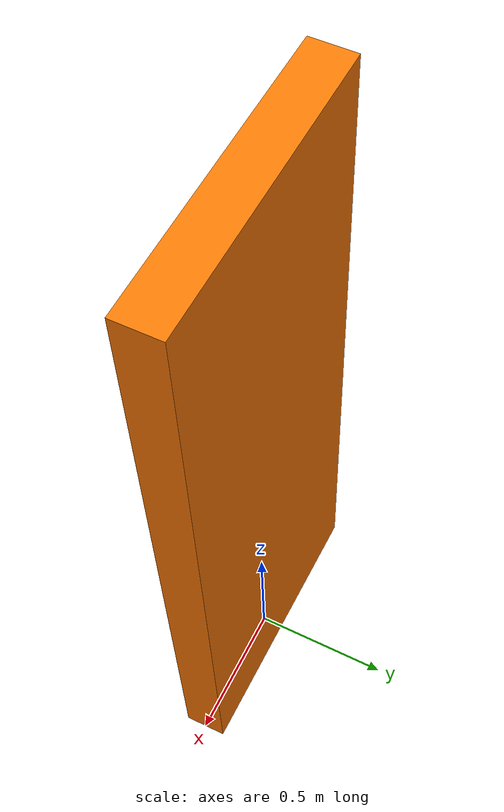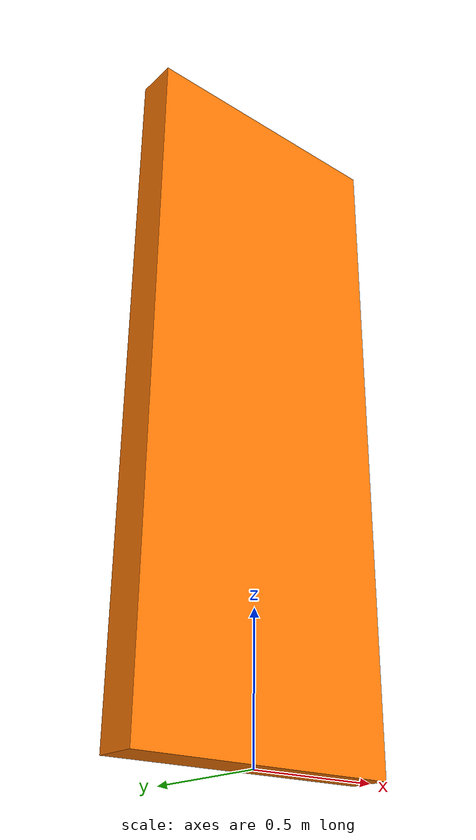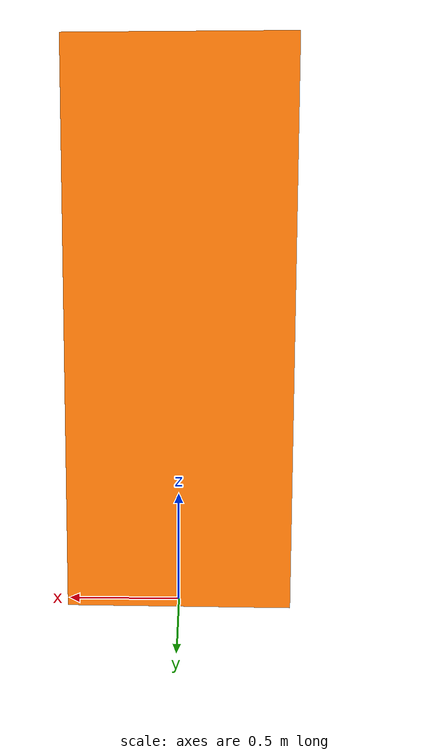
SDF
<?xml version='1.0'?>
<sdf version='1.6'>
  <model name='orange_wall'>
    <link name='Wall_0'>
      <pose frame=''>0 0 0 0 -0 3.14159</pose>
      <self_collide>0</self_collide>
      <kinematic>0</kinematic>
      <visual name='Wall_0_Visual'>
        <pose frame=''>0 0 1.25 0 -0 0</pose>
        <geometry>
          <box>
            <size>1 0.15 2.5</size>
          </box>
        </geometry>
        <material>
          <script>
            <uri>file://media/materials/scripts/gazebo.material</uri>
            <name>Gazebo/Grey</name>
          </script>
          <ambient>0.996078 0.47451 0.0196078 1</ambient>
          <shader type='pixel'/>
          <diffuse>0.7 0.7 0.7 1</diffuse>
          <specular>0.01 0.01 0.01 1</specular>
          <emissive>0 0 0 1</emissive>
        </material>
        <meta>
          <layer>0</layer>
        </meta>
        <transparency>0</transparency>
        <cast_shadows>1</cast_shadows>
      </visual>
      <collision name='Wall_0_Collision'>
        <laser_retro>0</laser_retro>
        <max_contacts>10</max_contacts>
        <pose frame=''>0 0 1.25 0 -0 0</pose>
        <geometry>
          <box>
            <size>1 0.15 2.5</size>
          </box>
        </geometry>
        <surface>
          <friction>
            <ode>
              <mu>1</mu>
              <mu2>1</mu2>
              <fdir1>0 0 0</fdir1>
              <slip1>0</slip1>
              <slip2>0</slip2>
            </ode>
            <torsional>
              <coefficient>1</coefficient>
              <patch_radius>0</patch_radius>
              <surface_radius>0</surface_radius>
              <use_patch_radius>1</use_patch_radius>
              <ode>
                <slip>0</slip>
              </ode>
            </torsional>
          </friction>
          <bounce>
            <restitution_coefficient>0</restitution_coefficient>
            <threshold>1e+06</threshold>
          </bounce>
          <contact>
            <collide_without_contact>0</collide_without_contact>
            <collide_without_contact_bitmask>1</collide_without_contact_bitmask>
            <collide_bitmask>1</collide_bitmask>
            <ode>
              <soft_cfm>0</soft_cfm>
              <soft_erp>0.2</soft_erp>
              <kp>1e+13</kp>
              <kd>1</kd>
              <max_vel>0.01</max_vel>
              <min_depth>0</min_depth>
            </ode>
            <bullet>
              <split_impulse>1</split_impulse>
              <split_impulse_penetration_threshold>-0.01</split_impulse_penetration_threshold>
              <soft_cfm>0</soft_cfm>
              <soft_erp>0.2</soft_erp>
              <kp>1e+13</kp>
              <kd>1</kd>
            </bullet>
          </contact>
        </surface>
      </collision>
    </link>
    <static>1</static>
    <allow_auto_disable>1</allow_auto_disable>
  </model>
</sdf>
